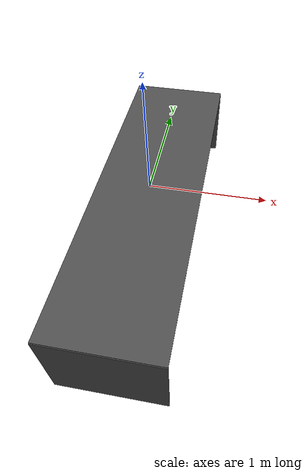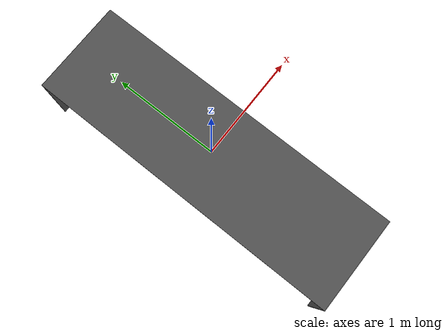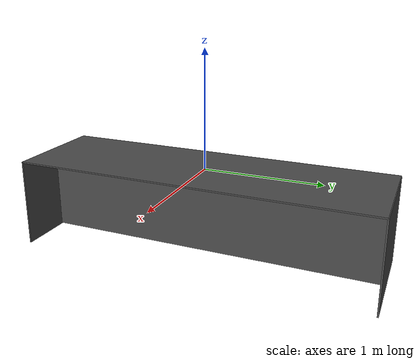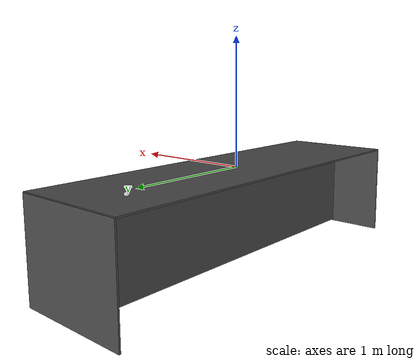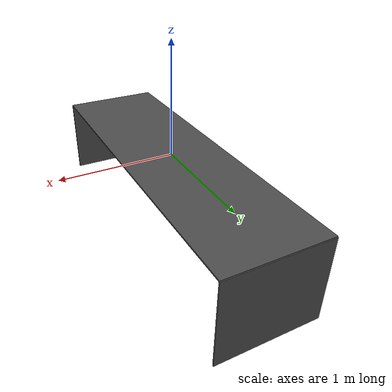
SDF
<?xml version='1.0'?>
<sdf version='1.6'>
  <model name='ahg_table'>
    <static>1</static>
    <link name='link'>
      <pose frame=''>0 0 0 0 -0 0</pose>
      <gravity>1</gravity>
      <visual name='visual'>
        <pose frame=''>0 0 0 0 -0 0</pose>
        <geometry>
          <box>
            <size>0.9144 3.048 0.0125</size>
          </box>
        </geometry>
        <material>
          <lighting>1</lighting>
            <script>
              <name>Gazebo/DarkGrey</name>
              <uri>file://media/materials/scripts/gazebo.material</uri>
            </script>
            <shader type='pixel'/>
	    <emissive>0.05 0.05 0.05 1</emissive>
        </material>
        <transparency>0</transparency>
        <cast_shadows>1</cast_shadows>
      </visual>

      <visual name='right_leg_visual'>
        <pose frame=''>0 1.524 -0.381 0 -0 0</pose>
        <geometry>
          <box>
            <size>0.9144 0.0125 0.762</size>
          </box>
        </geometry>
        <material>
          <lighting>1</lighting>
             <script>
              <name>Gazebo/DarkGrey</name>
              <uri>file://media/materials/scripts/gazebo.material</uri>
            </script>
            <shader type='pixel'/>
	    <emissive>0.05 0.05 0.05 1</emissive>
        </material>
        <transparency>0</transparency>
        <cast_shadows>1</cast_shadows>
      </visual>

      <visual name='left_leg_visual'>
        <pose frame=''>0 -1.524 -0.381 0 -0 0</pose>
        <geometry>
          <box>
            <size>0.9144 0.0125 0.762</size>
          </box>
        </geometry>
        <material>
          <lighting>1</lighting>
            <script>
              <name>Gazebo/DarkGrey</name>
              <uri>file://media/materials/scripts/gazebo.material</uri>
            </script>
            <shader type='pixel'/>
	    <emissive>0.05 0.05 0.05 1</emissive>
        </material>
        <transparency>0</transparency>
        <cast_shadows>1</cast_shadows>
      </visual>

      <visual name='middle_visual'>
        <pose frame=''>0 0 -0.37475 0 -0 0</pose>
        <geometry>
          <box>
            <size>0.0125 3.023 0.7495</size>
          </box>
        </geometry>
        <material>
          <lighting>1</lighting>
            <script>
              <name>Gazebo/DarkGrey</name>
              <uri>file://media/materials/scripts/gazebo.material</uri>
            </script>
            <shader type='pixel'/>
	    <emissive>0.05 0.05 0.05 1</emissive>
        </material>
        <transparency>0</transparency>
        <cast_shadows>1</cast_shadows>
      </visual>

      <collision name='right_leg'>
        <laser_retro>0</laser_retro>
        <max_contacts>10</max_contacts>
        <pose frame=''>0 1.524 -0.381 0 -0 0</pose>
        <geometry>
          <box>
            <size>0.9144 0.0125 0.762</size>
          </box>
        </geometry>
      </collision>

      <collision name='left_leg'>
        <laser_retro>0</laser_retro>
        <max_contacts>10</max_contacts>
        <pose frame=''>0 -1.524 -0.381 0 -0 0</pose>
        <geometry>
          <box>
            <size>0.9144 0.0125 0.762</size>
          </box>
        </geometry>
      </collision>

      <collision name='middle'>
        <laser_retro>0</laser_retro>
        <max_contacts>10</max_contacts>
        <pose frame=''>0 0 -0.37475 0 -0 0</pose>
        <geometry>
          <box>
            <size>0.0125 3.023 0.7495</size>
          </box>
        </geometry>
      </collision>
    </link>
    <allow_auto_disable>1</allow_auto_disable>
  </model>
</sdf>
